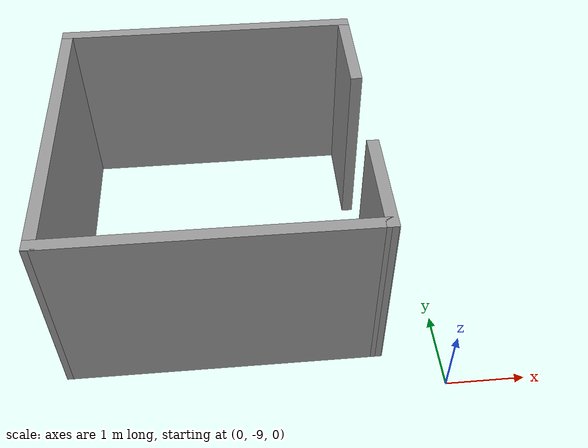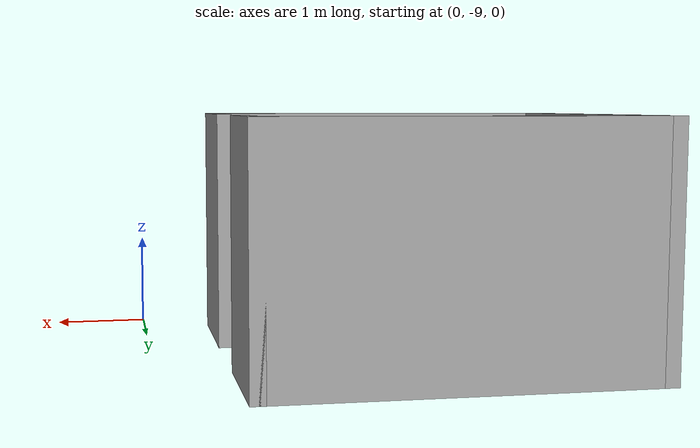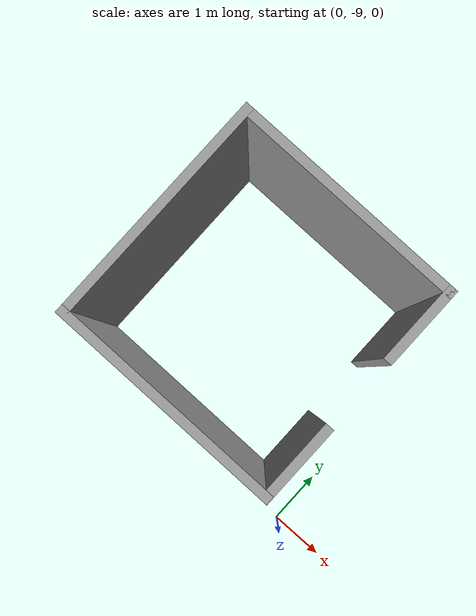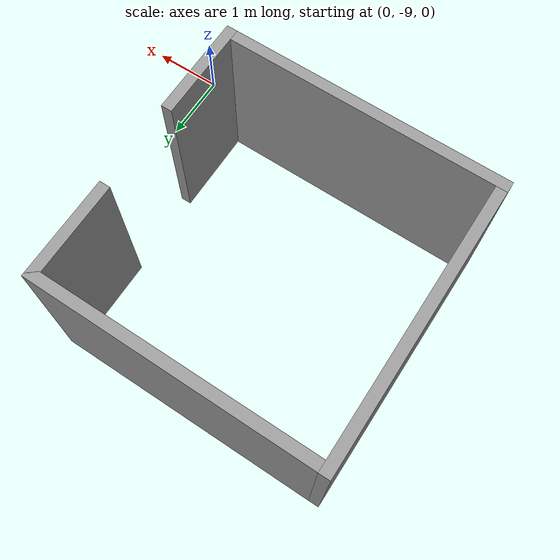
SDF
<?xml version='1.0'?>
<sdf version='1.7'>
  <model name='room_4by4'>
    <pose>-2.37316 -4.26296 0 0 -0 0</pose>
    <link name='Wall_59'>
      <collision name='Wall_59_Collision'>
        <geometry>
          <box>
            <size>1.4 0.15 2.5</size>
          </box>
        </geometry>
        <pose>0 0 1.25 0 -0 0</pose>
      </collision>
      <visual name='Wall_59_Visual'>
        <pose>0 0 1.25 0 -0 0</pose>
        <geometry>
          <box>
            <size>1.4 0.15 2.5</size>
          </box>
        </geometry>
        <material>
          <script>
            <uri>file://media/materials/scripts/gazebo.material</uri>
            <name>Gazebo/Grey</name>
          </script>
          <ambient>1 1 1 1</ambient>
        </material>
        <meta>
          <layer>0</layer>
        </meta>
      </visual>
      <pose>1.56203 -3.56276 0 0 -0 -1.5708</pose>
    </link>
    <link name='Wall_60'>
      <collision name='Wall_60_Collision'>
        <geometry>
          <box>
            <size>4.00001 0.15 2.5</size>
          </box>
        </geometry>
        <pose>0 0 1.25 0 -0 0</pose>
      </collision>
      <visual name='Wall_60_Visual'>
        <pose>0 0 1.25 0 -0 0</pose>
        <geometry>
          <box>
            <size>4.00001 0.15 2.5</size>
          </box>
        </geometry>
        <material>
          <script>
            <uri>file://media/materials/scripts/gazebo.material</uri>
            <name>Gazebo/Grey</name>
          </script>
          <ambient>1 1 1 1</ambient>
        </material>
        <meta>
          <layer>0</layer>
        </meta>
      </visual>
      <pose>-0.37297 -4.18276 0 0 -0 3.13899</pose>
    </link>
    <link name='Wall_61'>
      <collision name='Wall_61_Collision'>
        <geometry>
          <box>
            <size>4 0.15 2.5</size>
          </box>
        </geometry>
        <pose>0 0 1.25 0 -0 0</pose>
      </collision>
      <visual name='Wall_61_Visual'>
        <pose>0 0 1.25 0 -0 0</pose>
        <geometry>
          <box>
            <size>4 0.15 2.5</size>
          </box>
        </geometry>
        <material>
          <script>
            <uri>file://media/materials/scripts/gazebo.material</uri>
            <name>Gazebo/Grey</name>
          </script>
          <ambient>1 1 1 1</ambient>
        </material>
        <meta>
          <layer>0</layer>
        </meta>
      </visual>
      <pose>-2.29797 -2.25276 0 0 -0 1.5708</pose>
    </link>
    <link name='Wall_62'>
      <collision name='Wall_62_Collision'>
        <geometry>
          <box>
            <size>4 0.15 2.5</size>
          </box>
        </geometry>
        <pose>0 0 1.25 0 -0 0</pose>
      </collision>
      <visual name='Wall_62_Visual'>
        <pose>0 0 1.25 0 -0 0</pose>
        <geometry>
          <box>
            <size>4 0.15 2.5</size>
          </box>
        </geometry>
        <material>
          <script>
            <uri>file://media/materials/scripts/gazebo.material</uri>
            <name>Gazebo/Grey</name>
          </script>
          <ambient>1 1 1 1</ambient>
        </material>
        <meta>
          <layer>0</layer>
        </meta>
      </visual>
      <pose>-0.37297 -0.327762 0 0 -0 0</pose>
    </link>
    <link name='Wall_63'>
      <collision name='Wall_63_Collision'>
        <geometry>
          <box>
            <size>1.4 0.15 2.5</size>
          </box>
        </geometry>
        <pose>0 0 1.25 0 -0 0</pose>
      </collision>
      <visual name='Wall_63_Visual'>
        <pose>0 0 1.25 0 -0 0</pose>
        <geometry>
          <box>
            <size>1.4 0.15 2.5</size>
          </box>
        </geometry>
        <material>
          <script>
            <uri>file://media/materials/scripts/gazebo.material</uri>
            <name>Gazebo/Grey</name>
          </script>
          <ambient>1 1 1 1</ambient>
        </material>
        <meta>
          <layer>0</layer>
        </meta>
      </visual>
      <pose>1.55203 -0.952762 0 0 -0 -1.5708</pose>
    </link>
    <static>1</static>
  </model>
</sdf>
